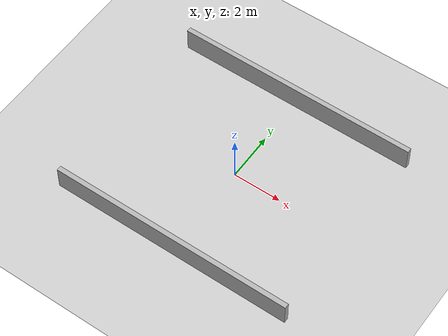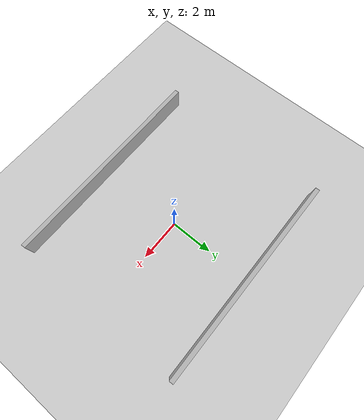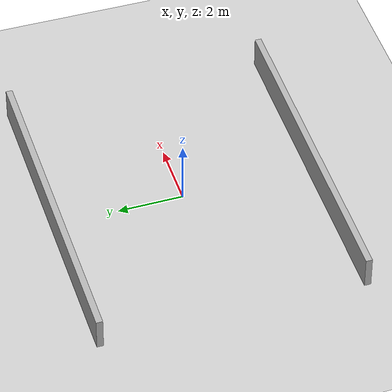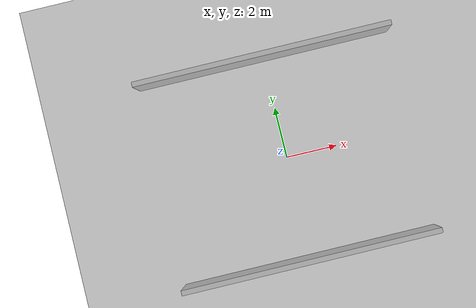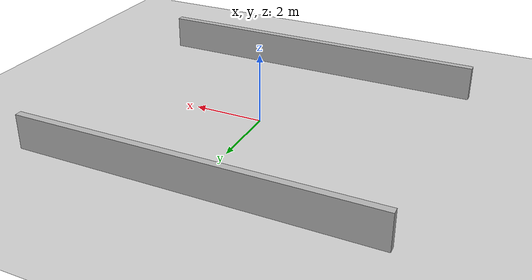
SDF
<?xml version="1.0"?>
<sdf version="1.6">
  <world name="r550_indoor">
    <include>
      <uri>model://ground_plane</uri>
    </include>
    <include>
      <uri>model://sun</uri>
    </include>

    <model name="wall_1">
      <static>true</static>
      <link name="link">
        <collision name="collision">
          <geometry><box><size>10 0.2 1</size></box></geometry>
        </collision>
        <visual name="visual">
          <geometry><box><size>10 0.2 1</size></box></geometry>
          <material><ambient>0.7 0.7 0.7 1</ambient></material>
        </visual>
      </link>
      <pose>0 4 0.5 0 0 0</pose>
    </model>

    <model name="wall_2">
      <static>true</static>
      <link name="link">
        <collision name="collision">
          <geometry><box><size>10 0.2 1</size></box></geometry>
        </collision>
        <visual name="visual">
          <geometry><box><size>10 0.2 1</size></box></geometry>
          <material><ambient>0.7 0.7 0.7 1</ambient></material>
        </visual>
      </link>
      <pose>0 -4 0.5 0 0 0</pose>
    </model>
  </world>
</sdf>
